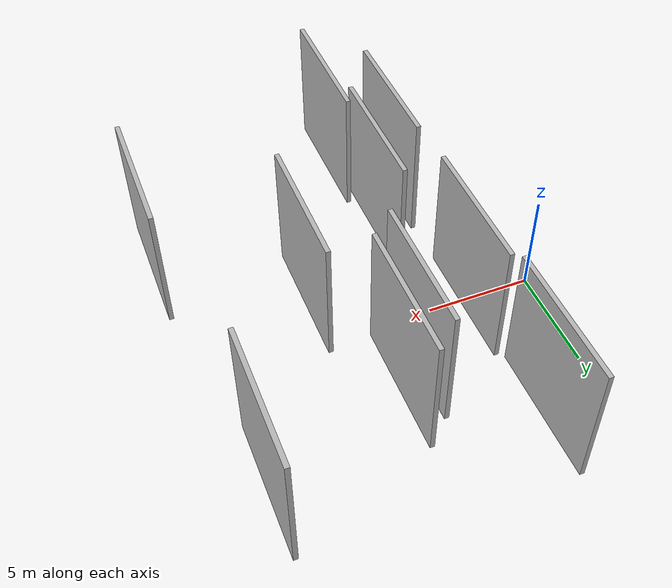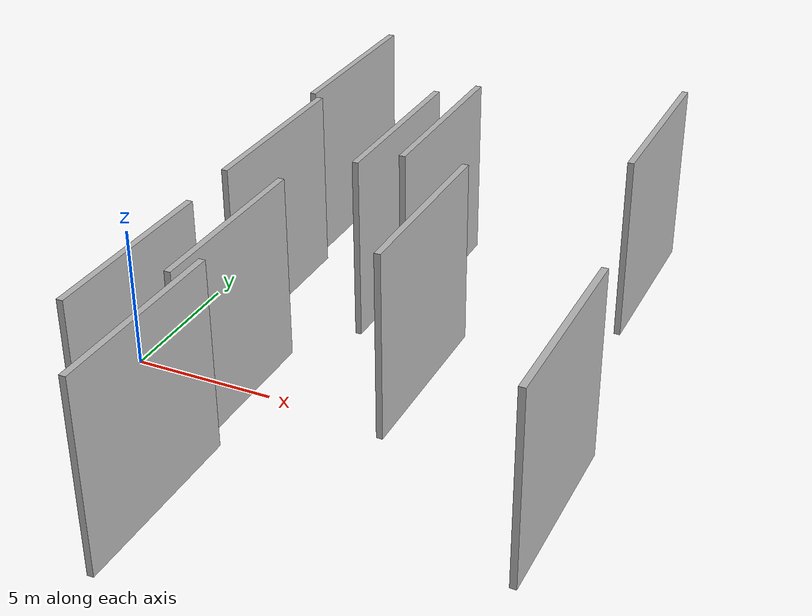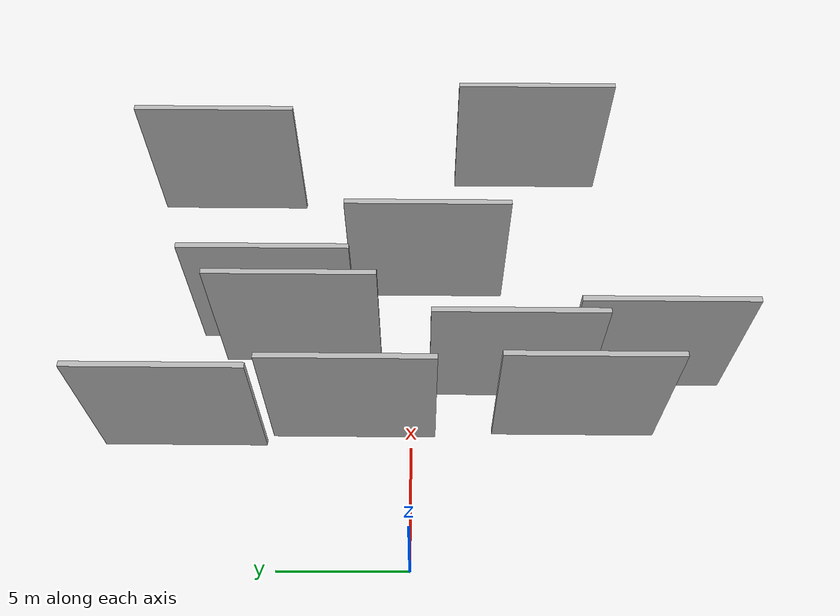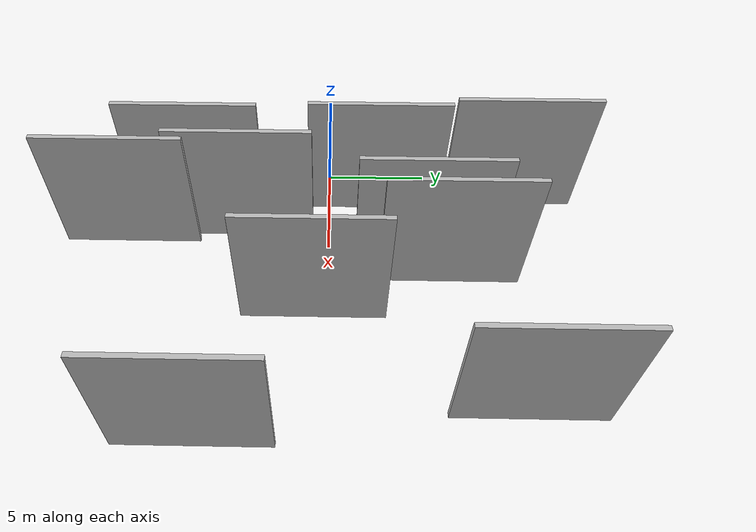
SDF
<sdf version="1.6">
 <world name="default">
  <scene>
   <sky><clouds><speed>12</speed></clouds></sky>
   <ambient>0.4 0.4 0.4 1</ambient>
   <background>0.7 0.7 0.7 1</background>
   <shadows>1</shadows>
  </scene>
  <gravity>0 0 -9.8066</gravity>
  <magnetic_field>6e-06 2.3e-05 -4.2e-05</magnetic_field>
  <physics default="0" name="default_physics" type="ode">
   <ode>
    <solver>
     <type>quick</type>
     <iters>10</iters>
     <sor>1.0</sor>
     <use_dynamic_moi_rescaling>0</use_dynamic_moi_rescaling>
    </solver>
    <constraints>
     <cfm>0</cfm>
     <erp>0.2</erp>
     <contact_max_correcting_vel>100</contact_max_correcting_vel>
     <contact_surface_layer>0.001</contact_surface_layer>
    </constraints>
   </ode>
   <max_step_size>0.004</max_step_size>
   <real_time_factor>1</real_time_factor>
   <real_time_update_rate>250</real_time_update_rate>
  </physics>
  <light name="sun" type="directional">
   <pose>0 0 10 0 0 0</pose>
   <diffuse>0.8 0.8 0.8 1</diffuse>
   <specular>0.2 0.2 0.2 1</specular>
   <attenuation>
    <range>1000</range>
    <constant>0.9</constant>
    <linear>0.01</linear>
    <quadratic>0.001</quadratic>
   </attenuation>
   <direction>-0.5 0.1 -0.9</direction>
  </light>
  <model name="grey_wall_1">
   <static>1</static>
   <pose>10.7565 -0.5702 2.5 0.000000 0.000000 1.570796</pose>
   <link name="link">
    <pose>0 0 3.00 0 0 0</pose>
    <collision name="collision"><geometry><box><size>6.00 0.2 6.00</size></box></geometry></collision>
    <visual name="visual">
     <cast_shadows>0</cast_shadows>
     <geometry><box><size>6.00 0.2 6.00</size></box></geometry>
     <material>
      <script>
       <uri>model://HANNAS_wall/materials/scripts</uri>
       <uri>model://HANNAS_wall/materials/textures</uri>
       <name>vrc/HANNAS_wall</name>
      </script>
     </material>
    </visual>
   </link>
  </model>
  <model name="grey_wall_2">
   <static>1</static>
   <pose>6.7323 -8.7533 2.5 0.000000 0.000000 1.570796</pose>
   <link name="link">
    <pose>0 0 3.00 0 0 0</pose>
    <collision name="collision"><geometry><box><size>6.00 0.2 6.00</size></box></geometry></collision>
    <visual name="visual">
     <cast_shadows>0</cast_shadows>
     <geometry><box><size>6.00 0.2 6.00</size></box></geometry>
     <material>
      <script>
       <uri>model://HANNAS_wall/materials/scripts</uri>
       <uri>model://HANNAS_wall/materials/textures</uri>
       <name>vrc/HANNAS_wall</name>
      </script>
     </material>
    </visual>
   </link>
  </model>
  <model name="grey_wall_3">
   <static>1</static>
   <pose>4.0878 8.3182 2.5 0.000000 0.000000 1.570796</pose>
   <link name="link">
    <pose>0 0 3.00 0 0 0</pose>
    <collision name="collision"><geometry><box><size>6.00 0.2 6.00</size></box></geometry></collision>
    <visual name="visual">
     <cast_shadows>0</cast_shadows>
     <geometry><box><size>6.00 0.2 6.00</size></box></geometry>
     <material>
      <script>
       <uri>model://HANNAS_wall/materials/scripts</uri>
       <uri>model://HANNAS_wall/materials/textures</uri>
       <name>vrc/HANNAS_wall</name>
      </script>
     </material>
    </visual>
   </link>
  </model>
  <model name="grey_wall_4">
   <static>1</static>
   <pose>7.7186 4.1759 2.5 0.000000 0.000000 1.570796</pose>
   <link name="link">
    <pose>0 0 3.00 0 0 0</pose>
    <collision name="collision"><geometry><box><size>6.00 0.2 6.00</size></box></geometry></collision>
    <visual name="visual">
     <cast_shadows>0</cast_shadows>
     <geometry><box><size>6.00 0.2 6.00</size></box></geometry>
     <material>
      <script>
       <uri>model://HANNAS_wall/materials/scripts</uri>
       <uri>model://HANNAS_wall/materials/textures</uri>
       <name>vrc/HANNAS_wall</name>
      </script>
     </material>
    </visual>
   </link>
  </model>
  <model name="grey_wall_5">
   <static>1</static>
   <pose>4.4621 2.0968 2.5 0.000000 0.000000 1.570796</pose>
   <link name="link">
    <pose>0 0 3.00 0 0 0</pose>
    <collision name="collision"><geometry><box><size>6.00 0.2 6.00</size></box></geometry></collision>
    <visual name="visual">
     <cast_shadows>0</cast_shadows>
     <geometry><box><size>6.00 0.2 6.00</size></box></geometry>
     <material>
      <script>
       <uri>model://HANNAS_wall/materials/scripts</uri>
       <uri>model://HANNAS_wall/materials/textures</uri>
       <name>vrc/HANNAS_wall</name>
      </script>
     </material>
    </visual>
   </link>
  </model>
  <model name="grey_wall_6">
   <static>1</static>
   <pose>4.6072 -6.0157 2.5 0.000000 0.000000 1.570796</pose>
   <link name="link">
    <pose>0 0 3.00 0 0 0</pose>
    <collision name="collision"><geometry><box><size>6.00 0.2 6.00</size></box></geometry></collision>
    <visual name="visual">
     <cast_shadows>0</cast_shadows>
     <geometry><box><size>6.00 0.2 6.00</size></box></geometry>
     <material>
      <script>
       <uri>model://HANNAS_wall/materials/scripts</uri>
       <uri>model://HANNAS_wall/materials/textures</uri>
       <name>vrc/HANNAS_wall</name>
      </script>
     </material>
    </visual>
   </link>
  </model>
  <model name="grey_wall_7">
   <static>1</static>
   <pose>8.7984 5.1712 2.5 0.000000 0.000000 1.570796</pose>
   <link name="link">
    <pose>0 0 3.00 0 0 0</pose>
    <collision name="collision"><geometry><box><size>6.00 0.2 6.00</size></box></geometry></collision>
    <visual name="visual">
     <cast_shadows>0</cast_shadows>
     <geometry><box><size>6.00 0.2 6.00</size></box></geometry>
     <material>
      <script>
       <uri>model://HANNAS_wall/materials/scripts</uri>
       <uri>model://HANNAS_wall/materials/textures</uri>
       <name>vrc/HANNAS_wall</name>
      </script>
     </material>
    </visual>
   </link>
  </model>
  <model name="grey_wall_8">
   <static>1</static>
   <pose>15.1754 7.5703 2.5 0.000000 0.000000 1.570796</pose>
   <link name="link">
    <pose>0 0 3.00 0 0 0</pose>
    <collision name="collision"><geometry><box><size>6.00 0.2 6.00</size></box></geometry></collision>
    <visual name="visual">
     <cast_shadows>0</cast_shadows>
     <geometry><box><size>6.00 0.2 6.00</size></box></geometry>
     <material>
      <script>
       <uri>model://HANNAS_wall/materials/scripts</uri>
       <uri>model://HANNAS_wall/materials/textures</uri>
       <name>vrc/HANNAS_wall</name>
      </script>
     </material>
    </visual>
   </link>
  </model>
  <model name="grey_wall_9">
   <static>1</static>
   <pose>6.2543 -3.6880 2.5 0.000000 0.000000 1.570796</pose>
   <link name="link">
    <pose>0 0 3.00 0 0 0</pose>
    <collision name="collision"><geometry><box><size>6.00 0.2 6.00</size></box></geometry></collision>
    <visual name="visual">
     <cast_shadows>0</cast_shadows>
     <geometry><box><size>6.00 0.2 6.00</size></box></geometry>
     <material>
      <script>
       <uri>model://HANNAS_wall/materials/scripts</uri>
       <uri>model://HANNAS_wall/materials/textures</uri>
       <name>vrc/HANNAS_wall</name>
      </script>
     </material>
    </visual>
   </link>
  </model>
  <model name="grey_wall_10">
   <static>1</static>
   <pose>16.4486 -4.7685 2.5 0.000000 0.000000 1.570796</pose>
   <link name="link">
    <pose>0 0 3.00 0 0 0</pose>
    <collision name="collision"><geometry><box><size>6.00 0.2 6.00</size></box></geometry></collision>
    <visual name="visual">
     <cast_shadows>0</cast_shadows>
     <geometry><box><size>6.00 0.2 6.00</size></box></geometry>
     <material>
      <script>
       <uri>model://HANNAS_wall/materials/scripts</uri>
       <uri>model://HANNAS_wall/materials/textures</uri>
       <name>vrc/HANNAS_wall</name>
      </script>
     </material>
    </visual>
   </link>
  </model>
 </world>
</sdf>
